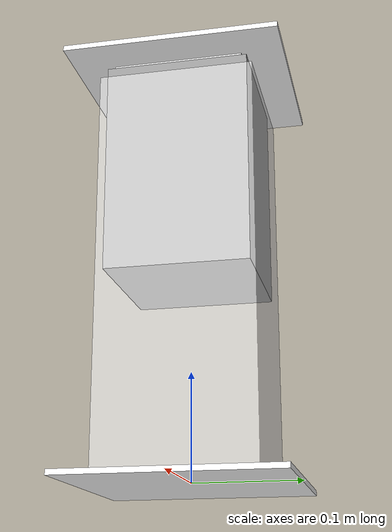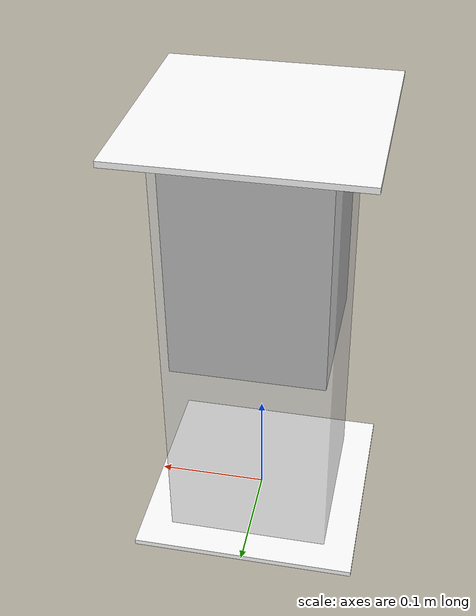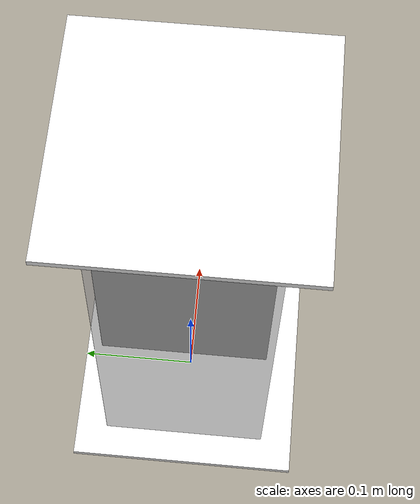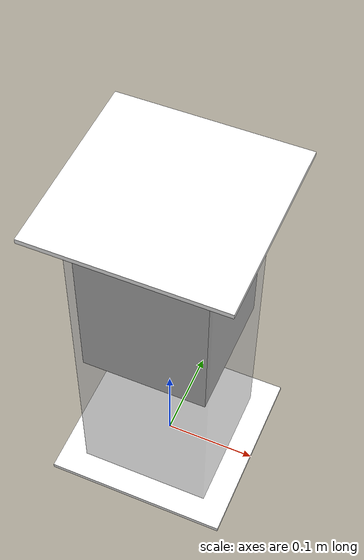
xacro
<?xml version="1.0" encoding="utf-8"?>
<robot xmlns:xacro="http://ros.org/wiki/xacro">

  <!-- 材质定义 -->
  <material name="light_white">
    <color rgba="1.0 1.0 1.0 1.0"/>
  </material>
  <material name="dirty_white">
    <color rgba="0.9 0.9 0.9 0.6"/>
  </material>
  <material name="silver_white">
    <color rgba="0.8 0.8 0.8 1.0"/>
  </material>
  <material name="silver_gray">
    <color rgba="0.6 0.6 0.6 1.0"/>
  </material>

  <!-- lift_base_link -->
  <link name="lift_base_link">
    <visual>
      <origin xyz="0 0 0" rpy="0 0 0"/>
      <geometry>
        <box size="0.2 0.2 0.005" />
      </geometry>
      <material name="light_white" />
    </visual>
    <collision>
      <geometry>
        <box size="0.2 0.2 0.005" /> <!-- 或使用 mesh -->
      </geometry>
    </collision>
  </link>

  <!-- lift_shell_link -->
  <link name="lift_shell_link">
    <visual>
      <origin xyz="0 0 0" rpy="0 0 0"/>
      <geometry>
        <box size="0.144 0.144 0.37"/>
      </geometry>
      <material name="dirty_white"/>
    </visual>
    <collision>
      <geometry>
        <box size="0.144 0.144 0.37"/> <!-- 或使用 mesh -->
      </geometry>
    </collision>
  </link>

  <joint name="lift_base_to_shell" type="fixed">
    <parent link="lift_base_link"/>
    <child link="lift_shell_link"/>
    <origin xyz="0 0 0.18625" rpy="0 0 0"/>
  </joint>

  <!-- lift_link1 -->
  <link name="lift_link1">
    <visual>
      <origin xyz="0 0 0" rpy="0 0 0"/>
      <geometry>
        <box size="0.133 0.133 0.20"/>
      </geometry>
      <material name="silver_gray"/>
    </visual>
    <collision>
      <geometry>
        <box size="0.133 0.133 0.20"/> <!-- 或使用 mesh -->
      </geometry>
    </collision>
  </link>

  <joint name="lift_base_to_lift1" type="fixed">
    <parent link="lift_base_link"/>
    <child link="lift_link1"/>
    <origin xyz="0 0 0.2825" rpy="0 0 0"/>
  </joint>

  <!-- lift_link2 -->
  <link name="lift_link2">
    <visual>
      <geometry>
        <box size="0.122 0.122 0.20"/>
      </geometry>
      <material name="silver_white"/>
    </visual>
    <collision>
      <geometry>
        <box size="0.122 0.122 0.20"/> <!-- 或使用 mesh -->
      </geometry>
    </collision>
  </link>

  <joint name="lift1_to_lift2" type="fixed">
    <parent link="lift_link1"/>
    <child link="lift_link2"/>
    <origin xyz="0 0 0.005" rpy="0 0 0"/>
  </joint>

  <!-- Top platform -->
  <link name="lift_top_link">
    <visual>
      <origin xyz="0 0 0" rpy="0 0 0"/>
      <geometry>
        <box size="0.20 0.20 0.005"/>
      </geometry>
      <material name="light_white"/>
    </visual>
    <collision>
      <geometry>
        <box size="0.20 0.20 0.005"/> <!-- 或使用 mesh -->
      </geometry>
    </collision>
  </link>

  <joint name="lift_base_to_top" type="fixed">
    <parent link="lift_link2"/>
    <child link="lift_top_link"/>
    <origin xyz="0 0 0.1025" rpy="0 0 0"/>
  </joint>

</robot>
